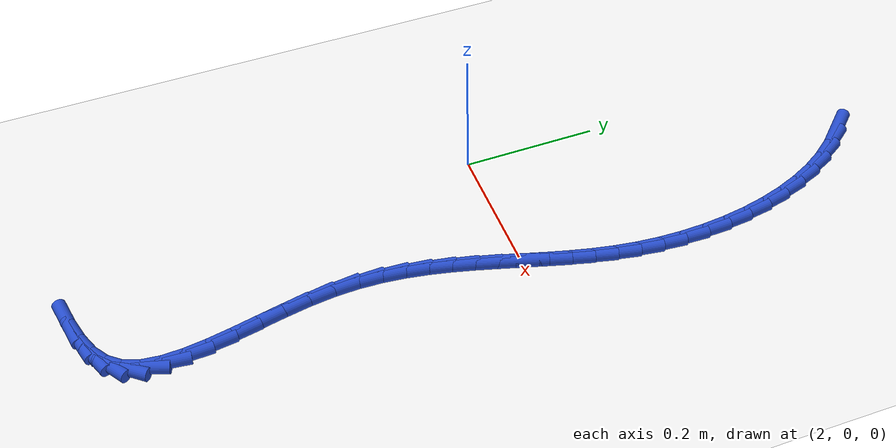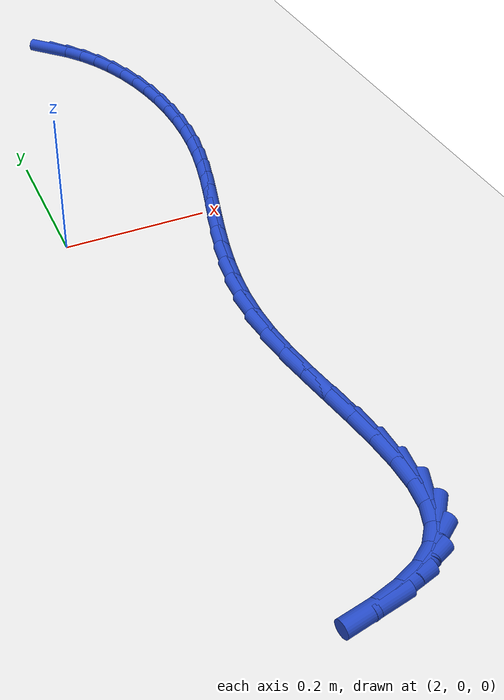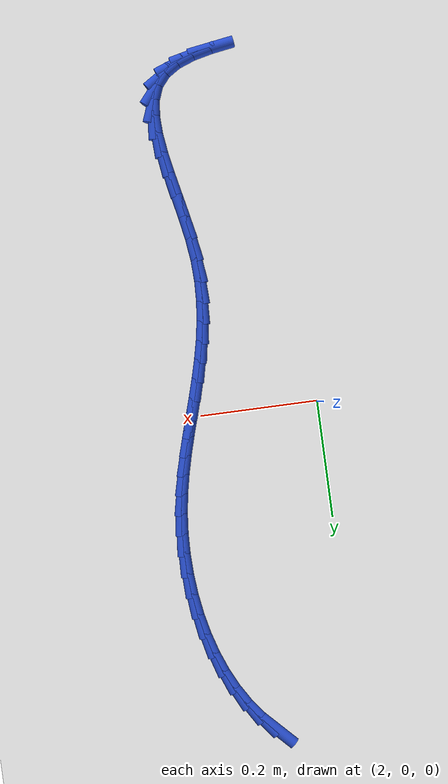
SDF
<sdf version="1.6">
 <world name="default">
  <model name="ground_plane">
   <static>1</static>
   <link name="link">
    <collision name="collision">
     <geometry><plane><normal>0 0 1</normal><size>100 100</size></plane></geometry>
     <surface><friction><ode><mu>100</mu><mu2>50</mu2></ode></friction></surface>
    </collision>
    <visual name="visual">
     <cast_shadows>0</cast_shadows>
     <geometry><plane><normal>0 0 1</normal><size>100 100</size></plane></geometry>
     <material>
      <script><uri>file://media/materials/scripts/gazebo.material</uri><name>Gazebo/WhiteGlow</name></script>
     </material>
    </visual>
   </link>
  </model>
  <model name="line">
   <link name="link_95">
    <pose>2.1439470185956107 0.5441175968139145 0.01 0 1.57 -0.8002482607288408</pose>
    <collision name="collision">
     <geometry><cylinder><radius>0.01</radius><length>0.08</length></cylinder></geometry>
    </collision>
    <visual name="visual">
     <material>
      <script><name>Gazebo/Blue</name><uri>file://media/materials/scripts/gazebo.material</uri></script>
     </material>
     <geometry><cylinder><radius>0.01</radius><length>0.08</length></cylinder></geometry>
    </visual>
   </link>
   <link name="link_96">
    <pose>2.166515345385559 0.5208688317315118 0.01 0 1.57 -0.917264319676159</pose>
    <collision name="collision">
     <geometry><cylinder><radius>0.01</radius><length>0.08</length></cylinder></geometry>
    </collision>
    <visual name="visual">
     <material>
      <script><name>Gazebo/Blue</name><uri>file://media/materials/scripts/gazebo.material</uri></script>
     </material>
     <geometry><cylinder><radius>0.01</radius><length>0.08</length></cylinder></geometry>
    </visual>
   </link>
   <link name="link_97">
    <pose>2.186473708648511 0.494806471283603 0.01 0 1.57 -1.022995192321031</pose>
    <collision name="collision">
     <geometry><cylinder><radius>0.01</radius><length>0.08</length></cylinder></geometry>
    </collision>
    <visual name="visual">
     <material>
      <script><name>Gazebo/Blue</name><uri>file://media/materials/scripts/gazebo.material</uri></script>
     </material>
     <geometry><cylinder><radius>0.01</radius><length>0.08</length></cylinder></geometry>
    </visual>
   </link>
   <link name="link_98">
    <pose>2.2038731826535765 0.46628666450206013 0.01 0 1.57 -1.1181523915620581</pose>
    <collision name="collision">
     <geometry><cylinder><radius>0.01</radius><length>0.08</length></cylinder></geometry>
    </collision>
    <visual name="visual">
     <material>
      <script><name>Gazebo/Blue</name><uri>file://media/materials/scripts/gazebo.material</uri></script>
     </material>
     <geometry><cylinder><radius>0.01</radius><length>0.08</length></cylinder></geometry>
    </visual>
   </link>
   <link name="link_99">
    <pose>2.218764841669866 0.43566556041875515 0.01 0 1.57 -1.2039896719587677</pose>
    <collision name="collision">
     <geometry><cylinder><radius>0.01</radius><length>0.08</length></cylinder></geometry>
    </collision>
    <visual name="visual">
     <material>
      <script><name>Gazebo/Blue</name><uri>file://media/materials/scripts/gazebo.material</uri></script>
     </material>
     <geometry><cylinder><radius>0.01</radius><length>0.08</length></cylinder></geometry>
    </visual>
   </link>
   <link name="link_100">
    <pose>2.2311997599664872 0.40329930806556147 0.01 0 1.57 -1.281986777777142</pose>
    <collision name="collision">
     <geometry><cylinder><radius>0.01</radius><length>0.08</length></cylinder></geometry>
    </collision>
    <visual name="visual">
     <material>
      <script><name>Gazebo/Blue</name><uri>file://media/materials/scripts/gazebo.material</uri></script>
     </material>
     <geometry><cylinder><radius>0.01</radius><length>0.08</length></cylinder></geometry>
    </visual>
   </link>
   <link name="link_101">
    <pose>2.24122901181255 0.3695440564743507 0.01 0 1.57 -1.3536627078748005</pose>
    <collision name="collision">
     <geometry><cylinder><radius>0.01</radius><length>0.08</length></cylinder></geometry>
    </collision>
    <visual name="visual">
     <material>
      <script><name>Gazebo/Blue</name><uri>file://media/materials/scripts/gazebo.material</uri></script>
     </material>
     <geometry><cylinder><radius>0.01</radius><length>0.08</length></cylinder></geometry>
    </visual>
   </link>
   <link name="link_102">
    <pose>2.248903671477165 0.33475595467699626 0.01 0 1.57 -1.4204886620707098</pose>
    <collision name="collision">
     <geometry><cylinder><radius>0.01</radius><length>0.08</length></cylinder></geometry>
    </collision>
    <visual name="visual">
     <material>
      <script><name>Gazebo/Blue</name><uri>file://media/materials/scripts/gazebo.material</uri></script>
     </material>
     <geometry><cylinder><radius>0.01</radius><length>0.08</length></cylinder></geometry>
    </visual>
   </link>
   <link name="link_103">
    <pose>2.25427481322944 0.29929115170536963 0.01 0 1.57 -1.4838658427316669</pose>
    <collision name="collision">
     <geometry><cylinder><radius>0.01</radius><length>0.08</length></cylinder></geometry>
    </collision>
    <visual name="visual">
     <material>
      <script><name>Gazebo/Blue</name><uri>file://media/materials/scripts/gazebo.material</uri></script>
     </material>
     <geometry><cylinder><radius>0.01</radius><length>0.08</length></cylinder></geometry>
    </visual>
   </link>
   <link name="link_104">
    <pose>2.257393511338483 0.26350579659134404 0.01 0 1.57 -1.5451422376367907</pose>
    <collision name="collision">
     <geometry><cylinder><radius>0.01</radius><length>0.08</length></cylinder></geometry>
    </collision>
    <visual name="visual">
     <material>
      <script><name>Gazebo/Blue</name><uri>file://media/materials/scripts/gazebo.material</uri></script>
     </material>
     <geometry><cylinder><radius>0.01</radius><length>0.08</length></cylinder></geometry>
    </visual>
   </link>
   <link name="link_105">
    <pose>2.258310840073407 0.22775603836679142 0.01 0 1.57 1.5359395319821048</pose>
    <collision name="collision">
     <geometry><cylinder><radius>0.01</radius><length>0.08</length></cylinder></geometry>
    </collision>
    <visual name="visual">
     <material>
      <script><name>Gazebo/Blue</name><uri>file://media/materials/scripts/gazebo.material</uri></script>
     </material>
     <geometry><cylinder><radius>0.01</radius><length>0.08</length></cylinder></geometry>
    </visual>
   </link>
   <link name="link_106">
    <pose>2.257077873703319 0.19239802606358486 0.01 0 1.57 1.4748143810046894</pose>
    <collision name="collision">
     <geometry><cylinder><radius>0.01</radius><length>0.08</length></cylinder></geometry>
    </collision>
    <visual name="visual">
     <material>
      <script><name>Gazebo/Blue</name><uri>file://media/materials/scripts/gazebo.material</uri></script>
     </material>
     <geometry><cylinder><radius>0.01</radius><length>0.08</length></cylinder></geometry>
    </visual>
   </link>
   <link name="link_107">
    <pose>2.2537456881333564 0.1577879061255077 0.01 0 1.57 1.4138854747575558</pose>
    <collision name="collision">
     <geometry><cylinder><radius>0.01</radius><length>0.08</length></cylinder></geometry>
    </collision>
    <visual name="visual">
     <material>
      <script><name>Gazebo/Blue</name><uri>file://media/materials/scripts/gazebo.material</uri></script>
     </material>
     <geometry><cylinder><radius>0.01</radius><length>0.08</length></cylinder></geometry>
    </visual>
   </link>
   <link name="link_108">
    <pose>2.2484287721388885 0.12418151003168769 0.01 0 1.57 1.3612912867855111</pose>
    <collision name="collision">
     <geometry><cylinder><radius>0.01</radius><length>0.08</length></cylinder></geometry>
    </collision>
    <visual name="visual">
     <material>
      <script><name>Gazebo/Blue</name><uri>file://media/materials/scripts/gazebo.material</uri></script>
     </material>
     <geometry><cylinder><radius>0.01</radius><length>0.08</length></cylinder></geometry>
    </visual>
   </link>
   <link name="link_109">
    <pose>2.24147314581537 0.0914684020333679 0.01 0 1.57 1.320180093073861</pose>
    <collision name="collision">
     <geometry><cylinder><radius>0.01</radius><length>0.08</length></cylinder></geometry>
    </collision>
    <visual name="visual">
     <material>
      <script><name>Gazebo/Blue</name><uri>file://media/materials/scripts/gazebo.material</uri></script>
     </material>
     <geometry><cylinder><radius>0.01</radius><length>0.08</length></cylinder></geometry>
    </visual>
   </link>
   <link name="link_110">
    <pose>2.233277656648158 0.0594545769465729 0.01 0 1.57 1.2914974889657</pose>
    <collision name="collision">
     <geometry><cylinder><radius>0.01</radius><length>0.08</length></cylinder></geometry>
    </collision>
    <visual name="visual">
     <material>
      <script><name>Gazebo/Blue</name><uri>file://media/materials/scripts/gazebo.material</uri></script>
     </material>
     <geometry><cylinder><radius>0.01</radius><length>0.08</length></cylinder></geometry>
    </visual>
   </link>
   <link name="link_111">
    <pose>2.224241152122606 0.02794602958732886 0.01 0 1.57 1.2758293564568077</pose>
    <collision name="collision">
     <geometry><cylinder><radius>0.01</radius><length>0.08</length></cylinder></geometry>
    </collision>
    <visual name="visual">
     <material>
      <script><name>Gazebo/Blue</name><uri>file://media/materials/scripts/gazebo.material</uri></script>
     </material>
     <geometry><cylinder><radius>0.01</radius><length>0.08</length></cylinder></geometry>
    </visual>
   </link>
   <link name="link_112">
    <pose>2.214762479724072 -0.0032512452283396907 0.01 0 1.57 1.2735054690291536</pose>
    <collision name="collision">
     <geometry><cylinder><radius>0.01</radius><length>0.08</length></cylinder></geometry>
    </collision>
    <visual name="visual">
     <material>
      <script><name>Gazebo/Blue</name><uri>file://media/materials/scripts/gazebo.material</uri></script>
     </material>
     <geometry><cylinder><radius>0.01</radius><length>0.08</length></cylinder></geometry>
    </visual>
   </link>
   <link name="link_113">
    <pose>2.20524048693791 -0.03433125268440654 0.01 0 1.57 1.2846646234928734</pose>
    <collision name="collision">
     <geometry><cylinder><radius>0.01</radius><length>0.08</length></cylinder></geometry>
    </collision>
    <visual name="visual">
     <material>
      <script><name>Gazebo/Blue</name><uri>file://media/materials/scripts/gazebo.material</uri></script>
     </material>
     <geometry><cylinder><radius>0.01</radius><length>0.08</length></cylinder></geometry>
    </visual>
   </link>
   <link name="link_114">
    <pose>2.1960740212494763 -0.0654879979648471 0.01 0 1.57 1.3092605555573134</pose>
    <collision name="collision">
     <geometry><cylinder><radius>0.01</radius><length>0.08</length></cylinder></geometry>
    </collision>
    <visual name="visual">
     <material>
      <script><name>Gazebo/Blue</name><uri>file://media/materials/scripts/gazebo.material</uri></script>
     </material>
     <geometry><cylinder><radius>0.01</radius><length>0.08</length></cylinder></geometry>
    </visual>
   </link>
   <link name="link_115">
    <pose>2.1876619301441256 -0.09691548625363516 0.01 0 1.57 1.3470027058229526</pose>
    <collision name="collision">
     <geometry><cylinder><radius>0.01</radius><length>0.08</length></cylinder></geometry>
    </collision>
    <visual name="visual">
     <material>
      <script><name>Gazebo/Blue</name><uri>file://media/materials/scripts/gazebo.material</uri></script>
     </material>
     <geometry><cylinder><radius>0.01</radius><length>0.08</length></cylinder></geometry>
    </visual>
   </link>
   <link name="link_116">
    <pose>2.1804030611072154 -0.1288077227347458 0.01 0 1.57 1.3972413799615504</pose>
    <collision name="collision">
     <geometry><cylinder><radius>0.01</radius><length>0.08</length></cylinder></geometry>
    </collision>
    <visual name="visual">
     <material>
      <script><name>Gazebo/Blue</name><uri>file://media/materials/scripts/gazebo.material</uri></script>
     </material>
     <geometry><cylinder><radius>0.01</radius><length>0.08</length></cylinder></geometry>
    </visual>
   </link>
   <link name="link_117">
    <pose>2.174696261624098 -0.16135871259215442 0.01 0 1.57 1.4588276504159714</pose>
    <collision name="collision">
     <geometry><cylinder><radius>0.01</radius><length>0.08</length></cylinder></geometry>
    </collision>
    <visual name="visual">
     <material>
      <script><name>Gazebo/Blue</name><uri>file://media/materials/scripts/gazebo.material</uri></script>
     </material>
     <geometry><cylinder><radius>0.01</radius><length>0.08</length></cylinder></geometry>
    </visual>
   </link>
   <link name="link_118">
    <pose>2.1709403791801325 -0.19476246100983405 0.01 0 1.57 1.5300033809781048</pose>
    <collision name="collision">
     <geometry><cylinder><radius>0.01</radius><length>0.08</length></cylinder></geometry>
    </collision>
    <visual name="visual">
     <material>
      <script><name>Gazebo/Blue</name><uri>file://media/materials/scripts/gazebo.material</uri></script>
     </material>
     <geometry><cylinder><radius>0.01</radius><length>0.08</length></cylinder></geometry>
    </visual>
   </link>
   <link name="link_119">
    <pose>2.1695342612606727 -0.22921297317176004 0.01 0 1.57 -1.5331999879080376</pose>
    <collision name="collision">
     <geometry><cylinder><radius>0.01</radius><length>0.08</length></cylinder></geometry>
    </collision>
    <visual name="visual">
     <material>
      <script><name>Gazebo/Blue</name><uri>file://media/materials/scripts/gazebo.material</uri></script>
     </material>
     <geometry><cylinder><radius>0.01</radius><length>0.08</length></cylinder></geometry>
    </visual>
   </link>
   <link name="link_120">
    <pose>2.170876755351075 -0.2649042542619071 0.01 0 1.57 -1.4539506863672955</pose>
    <collision name="collision">
     <geometry><cylinder><radius>0.01</radius><length>0.08</length></cylinder></geometry>
    </collision>
    <visual name="visual">
     <material>
      <script><name>Gazebo/Blue</name><uri>file://media/materials/scripts/gazebo.material</uri></script>
     </material>
     <geometry><cylinder><radius>0.01</radius><length>0.08</length></cylinder></geometry>
    </visual>
   </link>
   <link name="link_121">
    <pose>2.175224617453736 -0.30194506359416695 0.01 0 1.57 -1.3976197427054702</pose>
    <collision name="collision">
     <geometry><cylinder><radius>0.01</radius><length>0.08</length></cylinder></geometry>
    </collision>
    <visual name="visual">
     <material>
      <script><name>Gazebo/Blue</name><uri>file://media/materials/scripts/gazebo.material</uri></script>
     </material>
     <geometry><cylinder><radius>0.01</radius><length>0.08</length></cylinder></geometry>
    </visual>
   </link>
   <link name="link_122">
    <pose>2.181856578377598 -0.33985740744949405 0.01 0 1.57 -1.369075138440949</pose>
    <collision name="collision">
     <geometry><cylinder><radius>0.01</radius><length>0.08</length></cylinder></geometry>
    </collision>
    <visual name="visual">
     <material>
      <script><name>Gazebo/Blue</name><uri>file://media/materials/scripts/gazebo.material</uri></script>
     </material>
     <geometry><cylinder><radius>0.01</radius><length>0.08</length></cylinder></geometry>
    </visual>
   </link>
   <link name="link_123">
    <pose>2.189639726712473 -0.37791633290761384 0.01 0 1.57 -1.3656126428231323</pose>
    <collision name="collision">
     <geometry><cylinder><radius>0.01</radius><length>0.08</length></cylinder></geometry>
    </collision>
    <visual name="visual">
     <material>
      <script><name>Gazebo/Blue</name><uri>file://media/materials/scripts/gazebo.material</uri></script>
     </material>
     <geometry><cylinder><radius>0.01</radius><length>0.08</length></cylinder></geometry>
    </visual>
   </link>
   <link name="link_124">
    <pose>2.1974397176710516 -0.41539602711296697 0.01 0 1.57 -1.3881270901968186</pose>
    <collision name="collision">
     <geometry><cylinder><radius>0.01</radius><length>0.08</length></cylinder></geometry>
    </collision>
    <visual name="visual">
     <material>
      <script><name>Gazebo/Blue</name><uri>file://media/materials/scripts/gazebo.material</uri></script>
     </material>
     <geometry><cylinder><radius>0.01</radius><length>0.08</length></cylinder></geometry>
    </visual>
   </link>
   <link name="link_125">
    <pose>2.2041222064660246 -0.45157067720999405 0.01 0 1.57 -1.4417532154575523</pose>
    <collision name="collision">
     <geometry><cylinder><radius>0.01</radius><length>0.08</length></cylinder></geometry>
    </collision>
    <visual name="visual">
     <material>
      <script><name>Gazebo/Blue</name><uri>file://media/materials/scripts/gazebo.material</uri></script>
     </material>
     <geometry><cylinder><radius>0.01</radius><length>0.08</length></cylinder></geometry>
    </visual>
   </link>
   <link name="link_126">
    <pose>2.208552848310081 -0.48571447034313564 0.01 0 1.57 -1.5375322127659299</pose>
    <collision name="collision">
     <geometry><cylinder><radius>0.01</radius><length>0.08</length></cylinder></geometry>
    </collision>
    <visual name="visual">
     <material>
      <script><name>Gazebo/Blue</name><uri>file://media/materials/scripts/gazebo.material</uri></script>
     </material>
     <geometry><cylinder><radius>0.01</radius><length>0.08</length></cylinder></geometry>
    </visual>
   </link>
   <link name="link_127">
    <pose>2.2095972984159093 -0.5171015936568302 0.01 0 1.57 1.4468645509686051</pose>
    <collision name="collision">
     <geometry><cylinder><radius>0.01</radius><length>0.08</length></cylinder></geometry>
    </collision>
    <visual name="visual">
     <material>
      <script><name>Gazebo/Blue</name><uri>file://media/materials/scripts/gazebo.material</uri></script>
     </material>
     <geometry><cylinder><radius>0.01</radius><length>0.08</length></cylinder></geometry>
    </visual>
   </link>
   <link name="link_128">
    <pose>2.2061212119962015 -0.5450062342955188 0.01 0 1.57 1.2029980926936228</pose>
    <collision name="collision">
     <geometry><cylinder><radius>0.01</radius><length>0.08</length></cylinder></geometry>
    </collision>
    <visual name="visual">
     <material>
      <script><name>Gazebo/Blue</name><uri>file://media/materials/scripts/gazebo.material</uri></script>
     </material>
     <geometry><cylinder><radius>0.01</radius><length>0.08</length></cylinder></geometry>
    </visual>
   </link>
   <link name="link_129">
    <pose>2.196990244263647 -0.5687025794036416 0.01 0 1.57 0.870896600419721</pose>
    <collision name="collision">
     <geometry><cylinder><radius>0.01</radius><length>0.08</length></cylinder></geometry>
    </collision>
    <visual name="visual">
     <material>
      <script><name>Gazebo/Blue</name><uri>file://media/materials/scripts/gazebo.material</uri></script>
     </material>
     <geometry><cylinder><radius>0.01</radius><length>0.08</length></cylinder></geometry>
    </visual>
   </link>
   <link name="link_130">
    <pose>2.18114472624926 -0.5875188701909733 0.01 0 1.57 0.5622634227255522</pose>
    <collision name="collision">
     <geometry><cylinder><radius>0.01</radius><length>0.08</length></cylinder></geometry>
    </collision>
    <visual name="visual">
     <material>
      <script><name>Gazebo/Blue</name><uri>file://media/materials/scripts/gazebo.material</uri></script>
     </material>
     <geometry><cylinder><radius>0.01</radius><length>0.08</length></cylinder></geometry>
    </visual>
   </link>
   <link name="link_131">
    <pose>2.158720364588436 -0.6016486200861673 0.01 0 1.57 0.3546262867194853</pose>
    <collision name="collision">
     <geometry><cylinder><radius>0.01</radius><length>0.08</length></cylinder></geometry>
    </collision>
    <visual name="visual">
     <material>
      <script><name>Gazebo/Blue</name><uri>file://media/materials/scripts/gazebo.material</uri></script>
     </material>
     <geometry><cylinder><radius>0.01</radius><length>0.08</length></cylinder></geometry>
    </visual>
   </link>
   <link name="link_132">
    <pose>2.1308146699809707 -0.6119815440581106 0.01 0 1.57 0.22681111582487887</pose>
    <collision name="collision">
     <geometry><cylinder><radius>0.01</radius><length>0.08</length></cylinder></geometry>
    </collision>
    <visual name="visual">
     <material>
      <script><name>Gazebo/Blue</name><uri>file://media/materials/scripts/gazebo.material</uri></script>
     </material>
     <geometry><cylinder><radius>0.01</radius><length>0.08</length></cylinder></geometry>
    </visual>
   </link>
   <link name="link_133">
    <pose>2.0985524214047104 -0.6194270952093517 0.01 0 1.57 0.15284232095115474</pose>
    <collision name="collision">
     <geometry><cylinder><radius>0.01</radius><length>0.08</length></cylinder></geometry>
    </collision>
    <visual name="visual">
     <material>
      <script><name>Gazebo/Blue</name><uri>file://media/materials/scripts/gazebo.material</uri></script>
     </material>
     <geometry><cylinder><radius>0.01</radius><length>0.08</length></cylinder></geometry>
    </visual>
   </link>
  </model>
 </world>
</sdf>
